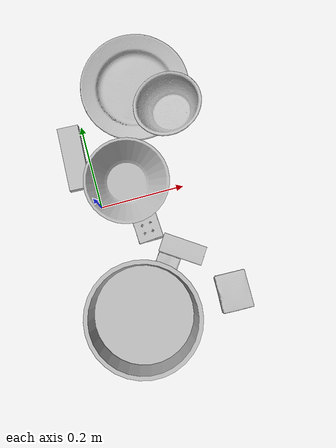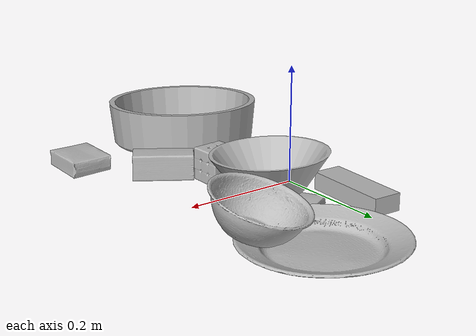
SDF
<sdf version="1.4">
  <world name="default">
    <light name="light1" type="point">
      <pose>0 0 1 0 0 0</pose>
      <diffuse>3 3 3 1</diffuse>
      <specular>3 3 3 1</specular>
    </light>
    <light name="light2" type="point">
      <pose>0 0.5 2 0 0 0</pose>
      <diffuse>1 1 1 1</diffuse>
      <specular>1 1 1 1</specular>
    </light>
    <light name="light3" type="point">
      <pose>0 0.5 2 0 0 0</pose>
      <diffuse>3 3 3 1</diffuse>
      <specular>3 3 3 1</specular>
    </light>
    <scene>
      <ambient>0.7 0.7 0.7</ambient>
    </scene>
    <model name="box1">
      <link name="link_box1">
        <collision name="default">
          <geometry>
            <mesh>
              <uri>model://rubiks_cube/collision_meshes/collision.obj</uri>
              <scale>1.0 1.0 1.0</scale>
            </mesh>
          </geometry>
          <surface>
            <friction>
              <ode>
                <mu>0.5</mu>
                <mu2>0.5</mu2>
              </ode>
            </friction>
          <contact>
        <ode>
            <max_vel>0</max_vel>
            <min_depth>0.0001</min_depth>
            <kp>1e8</kp>
        </ode>
    </contact></surface>
        </collision>
        <visual name="default">
          <geometry>
            <mesh>
              <uri>model://rubiks_cube/visual_meshes/visual.dae</uri>
              <scale>1.0 1.0 1.0</scale>
            </mesh>
          </geometry>
        </visual>
        <inertial>
          <mass>0.14937607944011688</mass>
          <pose>2.6721041649580002e-05 5.256967051536776e-05 -7.264316082000732e-06 -0.054671979216720346 -0.0981390543553378 -0.03445400726577695</pose>
          <inertia>
            <ixx>8.254031e-05</ixx>
            <iyy>8.2155384e-05</iyy>
            <izz>8.32243e-05</izz>
            <ixy>0</ixy>
            <ixz>0</ixz>
            <iyz>0</iyz>
          </inertia>
        </inertial>
      </link>
      <pose>0.09235775470733643 -0.07824471592903137 0.02868424728512764 -0.006725454277943597 -0.006525574580018289 -3.0838432831521008</pose>
    </model>
    <model name="box11">
      <link name="link_box11">
        <collision name="default">
          <geometry>
            <mesh>
              <uri>model://gelatin_box/collision_meshes/collision.obj</uri>
              <scale>1.0 1.0 1.0</scale>
            </mesh>
          </geometry>
          <surface>
            <friction>
              <ode>
                <mu>0.5</mu>
                <mu2>0.5</mu2>
              </ode>
            </friction>
          <contact>
        <ode>
            <max_vel>0</max_vel>
            <min_depth>0.0001</min_depth>
            <kp>1e8</kp>
        </ode>
    </contact></surface>
        </collision>
        <visual name="default">
          <geometry>
            <mesh>
              <uri>model://gelatin_box/visual_meshes/visual.dae</uri>
              <scale>1.0 1.0 1.0</scale>
            </mesh>
          </geometry>
        </visual>
        <inertial>
          <mass>0.1927502304315567</mass>
          <pose>0.0004319618456065655 0.00011156871914863586 -0.00036403213744051754 -0.0010503718519204429 -0.00475581822657324 0.016440557608202722</pose>
          <inertia>
            <ixx>0.00013606594</ixx>
            <iyy>9.7191194e-05</iyy>
            <izz>0.00020712269</izz>
            <ixy>0</ixy>
            <ixz>0</ixz>
            <iyz>0</iyz>
          </inertia>
        </inertial>
      </link>
      <pose>0.24783533811569214 -0.26819664239883423 0.01516831386834383 0.005597432933981263 -0.007304514751843911 3.1170175121631125</pose>
    </model>
    <model name="box2">
      <link name="link_box2">
        <collision name="default">
          <geometry>
            <mesh>
              <uri>model://jenga/collision_meshes/collision.obj</uri>
              <scale>1.0 1.0 1.0</scale>
            </mesh>
          </geometry>
          <surface>
            <friction>
              <ode>
                <mu>0.5</mu>
                <mu2>0.5</mu2>
              </ode>
            </friction>
          <contact>
        <ode>
            <max_vel>0</max_vel>
            <min_depth>0.0001</min_depth>
            <kp>1e8</kp>
        </ode>
    </contact></surface>
        </collision>
        <visual name="default">
          <geometry>
            <mesh>
              <uri>model://jenga/visual_meshes/visual.dae</uri>
              <scale>1.0 1.0 1.0</scale>
            </mesh>
          </geometry>
        </visual>
        <inertial>
          <mass>0.17753760516643524</mass>
          <pose>-2.5028555228345795e-07 -0.00010250010382151231 -4.0923401684267446e-05 0.0 -7.342155186052628e-07 0.0</pose>
          <inertia>
            <ixx>4.912897e-05</ixx>
            <iyy>0.00033289654</iyy>
            <izz>0.00035539534</izz>
            <ixy>0</ixy>
            <ixz>0</ixz>
            <iyz>0</iyz>
          </inertia>
        </inertial>
      </link>
      <pose>-0.032885197550058365 0.12756896018981934 0.01499999687075615 9.614260521973399e-09 7.04760716277565e-09 1.5316161543312157</pose>
    </model>
    <model name="box21">
      <link name="link_box21">
        <collision name="default">
          <geometry>
            <mesh>
              <uri>model://cracker_box/collision_meshes/collision.obj</uri>
              <scale>0.25 0.25 0.25</scale>
            </mesh>
          </geometry>
          <surface>
            <friction>
              <ode>
                <mu>0.5</mu>
                <mu2>0.5</mu2>
              </ode>
            </friction>
          <contact>
        <ode>
            <max_vel>0</max_vel>
            <min_depth>0.0001</min_depth>
            <kp>1e8</kp>
        </ode>
    </contact></surface>
        </collision>
        <visual name="default">
          <geometry>
            <mesh>
              <uri>model://cracker_box/visual_meshes/visual.dae</uri>
              <scale>0.25 0.25 0.25</scale>
            </mesh>
          </geometry>
        </visual>
        <inertial>
          <mass>0.032025858759880066</mass>
          <pose>0.00023660347505938262 6.358561950037256e-05 -0.0004257383698131889 -0.0003162079452709603 -0.01110648960005095 0.0025467945380896087</pose>
          <inertia>
            <ixx>5.091218e-06</ixx>
            <iyy>8.406602e-06</iyy>
            <izz>1.1996991e-05</izz>
            <ixy>0</ixy>
            <ixz>0</ixz>
            <iyz>0</iyz>
          </inertia>
        </inertial>
      </link>
      <pose>0.11544214189052582 -0.16705749928951263 0.009382600896060467 -0.03316728582359752 -0.007107251899891486 2.5402502010757417</pose>
    </model>
    <model name="box3">
      <link name="link_box3">
        <collision name="default">
          <geometry>
            <mesh>
              <uri>model://wood_block/collision_meshes/collision.obj</uri>
              <scale>0.5 0.5 0.5</scale>
            </mesh>
          </geometry>
          <surface>
            <friction>
              <ode>
                <mu>0.5</mu>
                <mu2>0.5</mu2>
              </ode>
            </friction>
          <contact>
        <ode>
            <max_vel>0</max_vel>
            <min_depth>0.0001</min_depth>
            <kp>1e8</kp>
        </ode>
    </contact></surface>
        </collision>
        <visual name="default">
          <geometry>
            <mesh>
              <uri>model://wood_block/visual_meshes/visual.dae</uri>
              <scale>0.5 0.5 0.5</scale>
            </mesh>
          </geometry>
        </visual>
        <inertial>
          <mass>0.12936852872371674</mass>
          <pose>-2.9066577553749084e-06 -0.00028540470520965755 0.00013204290007706732 -0.052209755292171825 -0.0051926950820086835 -0.006861377939779924</pose>
          <inertia>
            <ixx>4.327867e-05</ixx>
            <iyy>0.00013671734</iyy>
            <izz>0.00013620593</izz>
            <ixy>0</ixy>
            <ixz>0</ixz>
            <iyz>0</iyz>
          </inertia>
        </inertial>
      </link>
      <pose>0.15796568989753723 -0.14414024353027344 0.022629475221037865 -0.005209693955392314 0.005715358088469584 2.554071232621274</pose>
    </model>
    <model name="box31">
      <link name="link_box31">
        <collision name="default">
          <geometry>
            <mesh>
              <uri>model://pudding_box/collision_meshes/collision.obj</uri>
              <scale>0.5 0.5 0.5</scale>
            </mesh>
          </geometry>
          <surface>
            <friction>
              <ode>
                <mu>0.5</mu>
                <mu2>0.5</mu2>
              </ode>
            </friction>
          <contact>
        <ode>
            <max_vel>0</max_vel>
            <min_depth>0.0001</min_depth>
            <kp>1e8</kp>
        </ode>
    </contact></surface>
        </collision>
        <visual name="default">
          <geometry>
            <mesh>
              <uri>model://pudding_box/visual_meshes/visual.dae</uri>
              <scale>0.5 0.5 0.5</scale>
            </mesh>
          </geometry>
        </visual>
        <inertial>
          <mass>0.02777985855937004</mass>
          <pose>0.00024474109522998333 0.00040339428232982755 -0.0002594413817860186 0.005213100847255284 -0.006603800106148706 0.020079825159203687</pose>
          <inertia>
            <ixx>7.850925e-06</ixx>
            <iyy>5.282159e-06</iyy>
            <izz>1.1593943e-05</izz>
            <ixy>0</ixy>
            <ixz>0</ixz>
            <iyz>0</iyz>
          </inertia>
        </inertial>
      </link>
      <pose>0.06101476773619652 0.10959448665380478 0.01033221185207367 -0.01907305088569169 0.007180335525131159 -2.640907817171173</pose>
    </model>
    <model name="plate1">
      <link name="link_plate1">
        <collision name="default">
          <geometry>
            <mesh>
              <uri>model://plate/collision_meshes/collision.obj</uri>
              <scale>1.0 1.0 1.0</scale>
            </mesh>
          </geometry>
          <surface>
            <friction>
              <ode>
                <mu>0.5</mu>
                <mu2>0.5</mu2>
              </ode>
            </friction>
          <contact>
        <ode>
            <max_vel>0</max_vel>
            <min_depth>0.0001</min_depth>
            <kp>1e8</kp>
        </ode>
    </contact></surface>
        </collision>
        <visual name="default">
          <geometry>
            <mesh>
              <uri>model://plate/visual_meshes/visual.dae</uri>
              <scale>1.0 1.0 1.0</scale>
            </mesh>
          </geometry>
        </visual>
        <inertial>
          <mass>0.18243028223514557</mass>
          <pose>-0.0006044635083526373 0.00027825916185975075 -0.0010561967501416802 0.002218802985991306 -0.003225472580220492 0.4526054178664253</pose>
          <inertia>
            <ixx>0.00085341244</ixx>
            <iyy>0.00084524986</iyy>
            <izz>0.0016691468</izz>
            <ixy>0</ixy>
            <ixz>0</ixz>
            <iyz>0</iyz>
          </inertia>
        </inertial>
      </link>
      <pose>0.14904899895191193 0.25728920102119446 0.013733018189668655 1.5083804544985324e-07 -3.4316890434338623e-08 1.9213099191123695</pose>
    </model>
    <model name="bowl1">
      <link name="link_bowl1">
        <collision name="default">
          <geometry>
            <mesh>
              <uri>model://bowl_a/collision_meshes/collision.obj</uri>
              <scale>1.0 1.0 1.0</scale>
            </mesh>
          </geometry>
          <surface>
            <friction>
              <ode>
                <mu>0.5</mu>
                <mu2>0.5</mu2>
              </ode>
            </friction>
          <contact>
        <ode>
            <max_vel>0</max_vel>
            <min_depth>0.0001</min_depth>
            <kp>1e8</kp>
        </ode>
    </contact></surface>
        </collision>
        <visual name="default">
          <geometry>
            <mesh>
              <uri>model://bowl_a/visual_meshes/visual.dae</uri>
              <scale>1.0 1.0 1.0</scale>
            </mesh>
          </geometry>
        </visual>
        <inertial>
          <mass>0.33530884981155396</mass>
          <pose>0.00027867525932379067 4.7312179958680645e-05 -0.0013765293406322598 -0.0009805353119733814 -0.0010938238033148682 -0.19123781325276382</pose>
          <inertia>
            <ixx>0.0009546399</ixx>
            <iyy>0.0009605007</iyy>
            <izz>0.0016978635</izz>
            <ixy>0</ixy>
            <ixz>0</ixz>
            <iyz>0</iyz>
          </inertia>
        </inertial>
      </link>
      <pose>0.0729493498802185 0.0389176644384861 0.04647606983780861 0.04058424044532919 -0.045267888215094164 1.0878789982775259</pose>
    </model>
    <model name="plate2">
      <link name="link_plate2">
        <collision name="default">
          <geometry>
            <mesh>
              <uri>model://pan_tefal/collision_meshes/collision.obj</uri>
              <scale>1.0 1.0 1.0</scale>
            </mesh>
          </geometry>
          <surface>
            <friction>
              <ode>
                <mu>0.5</mu>
                <mu2>0.5</mu2>
              </ode>
            </friction>
          <contact>
        <ode>
            <max_vel>0</max_vel>
            <min_depth>0.0001</min_depth>
            <kp>1e8</kp>
        </ode>
    </contact></surface>
        </collision>
        <visual name="default">
          <geometry>
            <mesh>
              <uri>model://pan_tefal/visual_meshes/visual.dae</uri>
              <scale>1.0 1.0 1.0</scale>
            </mesh>
          </geometry>
        </visual>
        <inertial>
          <mass>1.3054066896438599</mass>
          <pose>-0.00018001779972109944 3.2791245757834986e-05 -0.008514936082065105 0.0008190347553724757 -0.0003301394488099971 -0.33186691456643896</pose>
          <inertia>
            <ixx>0.00901116</ixx>
            <iyy>0.009069256</iyy>
            <izz>0.016587809</izz>
            <ixy>0</ixy>
            <ixz>0</ixz>
            <iyz>0</iyz>
          </inertia>
        </inertial>
      </link>
      <pose>0.0327879972755909 -0.26938021183013916 0.04651722311973572 0.062253449845965356 0.04526546490567629 -1.053734726367383</pose>
    </model>
    <model name="bowl2">
      <link name="link_bowl2">
        <collision name="default">
          <geometry>
            <mesh>
              <uri>model://bowl/collision_meshes/collision.obj</uri>
              <scale>1.0 1.0 1.0</scale>
            </mesh>
          </geometry>
          <surface>
            <friction>
              <ode>
                <mu>0.5</mu>
                <mu2>0.5</mu2>
              </ode>
            </friction>
          <contact>
        <ode>
            <max_vel>0</max_vel>
            <min_depth>0.0001</min_depth>
            <kp>1e8</kp>
        </ode>
    </contact></surface>
        </collision>
        <visual name="default">
          <geometry>
            <mesh>
              <uri>model://bowl/visual_meshes/visual.dae</uri>
              <scale>1.0 1.0 1.0</scale>
            </mesh>
          </geometry>
        </visual>
        <inertial>
          <mass>0.1096961572766304</mass>
          <pose>0.00020445209520403296 -0.0010302049340680242 -0.0008042648551054299 -0.015764066902751193 0.014546817497496476 0.7140421604823016</pose>
          <inertia>
            <ixx>0.00025198064</ixx>
            <iyy>0.00024635042</iyy>
            <izz>0.0004239182</izz>
            <ixy>0</ixy>
            <ixz>0</ixz>
            <iyz>0</iyz>
          </inertia>
        </inertial>
      </link>
      <pose>0.21272769570350647 0.18131081759929657 0.04981597885489464 0.07286687314535562 -0.2978076221950805 -1.1146260239119485</pose>
    </model>
  <physics type="ode">
      <max_contacts>50</max_contacts>
      <ode>
        <solver>
          <type>quick</type>
          <iters>75</iters>
        </solver>
        <constraints>
          <contact_max_correcting_vel>0</contact_max_correcting_vel>
          <contact_surface_layer>0</contact_surface_layer>
        </constraints>
      </ode>
    </physics></world>
</sdf>
